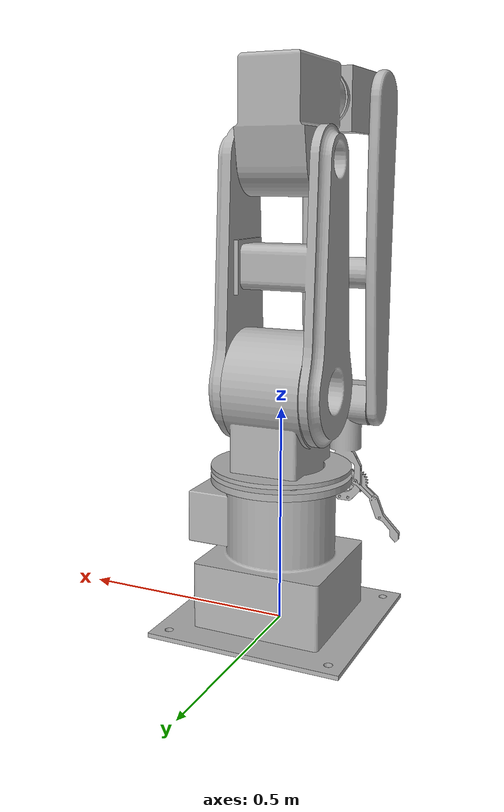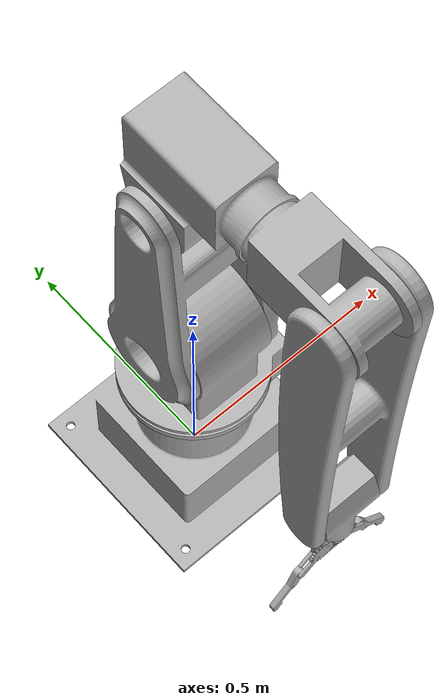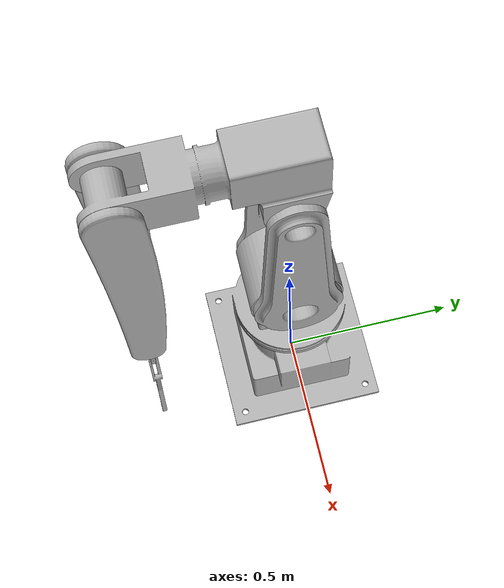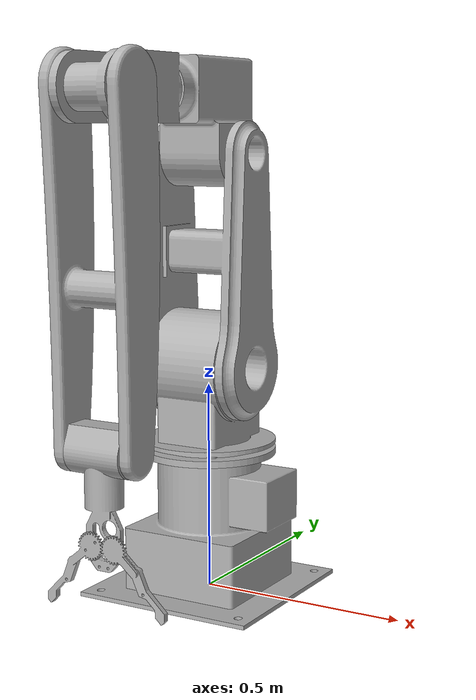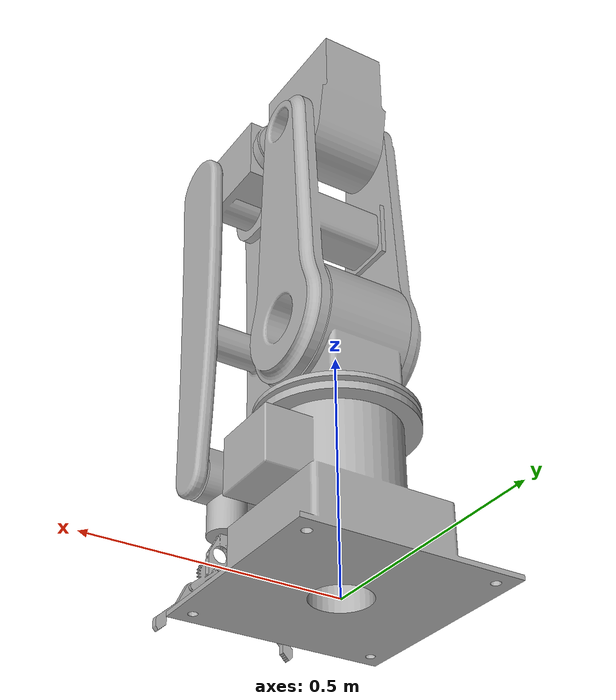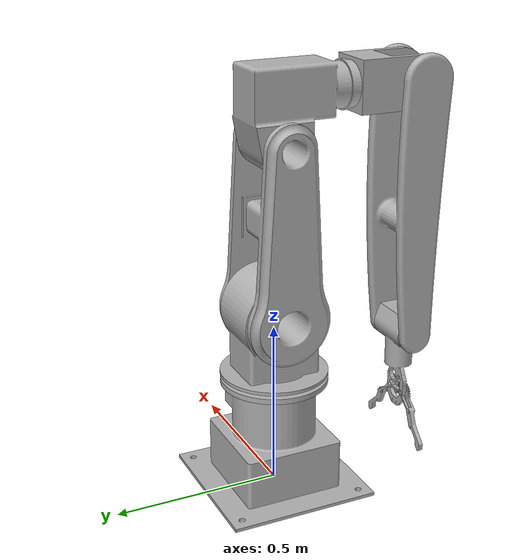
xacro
<?xml version="1.0" ?>
<robot name="gripperone" xmlns:xacro="http://www.ros.org/wiki/xacro">

<xacro:include filename="$(find gripperone_description)/urdf/materials.xacro" />
<xacro:include filename="$(find gripperone_description)/urdf/gripperone.trans" />
<xacro:include filename="$(find gripperone_description)/urdf/gripperone.gazebo" />
<link name="base_link">
  <inertial>
    <origin rpy="0 0 0" xyz="0.013100742072346745 3.232305809001723e-17 0.128434649849364"/>
    <mass value="141.36352349403447"/>
    <inertia ixx="2.770677" ixy="0.0" ixz="-0.206615" iyy="3.022714" iyz="0.0" izz="2.748975"/>
  </inertial>
  <visual>
    <origin rpy="0 0 0" xyz="0 0 0"/>
    <geometry>
      <mesh filename="package://gripperone_description/meshes/base_link.stl" scale="0.001 0.001 0.001"/>
    </geometry>
    <material name="silver"/>
  </visual>
  <collision>
    <origin rpy="0 0 0" xyz="0 0 0"/>
    <geometry>
      <mesh filename="package://gripperone_description/meshes/base_link.stl" scale="0.001 0.001 0.001"/>
    </geometry>
  </collision>
</link>

<link name="link1_1">
  <inertial>
    <origin rpy="0 0 0" xyz="7.96052754045408e-09 1.1704235139557597e-07 0.05605079320414236"/>
    <mass value="113.94031727647719"/>
    <inertia ixx="2.418287" ixy="0.0" ixz="-0.0" iyy="2.208887" iyz="-1e-06" izz="0.859498"/>
  </inertial>
  <visual>
    <origin rpy="0 0 0" xyz="-0.0 -0.0 -0.37"/>
    <geometry>
      <mesh filename="package://gripperone_description/meshes/link1_1.stl" scale="0.001 0.001 0.001"/>
    </geometry>
    <material name="silver"/>
  </visual>
  <collision>
    <origin rpy="0 0 0" xyz="-0.0 -0.0 -0.37"/>
    <geometry>
      <mesh filename="package://gripperone_description/meshes/link1_1.stl" scale="0.001 0.001 0.001"/>
    </geometry>
  </collision>
</link>

<link name="link2_1">
  <inertial>
    <origin rpy="0 0 0" xyz="0.5493289971509847 -0.09000000753235006 0.5305570384816423"/>
    <mass value="96.27136209757765"/>
    <inertia ixx="3.396419" ixy="0.0" ixz="-0.0" iyy="4.009316" iyz="0.0" izz="1.077023"/>
  </inertial>
  <visual>
    <origin rpy="0 0 0" xyz="0.548975 -0.09 -0.212975"/>
    <geometry>
      <mesh filename="package://gripperone_description/meshes/link2_1.stl" scale="0.001 0.001 0.001"/>
    </geometry>
    <material name="silver"/>
  </visual>
  <collision>
    <origin rpy="0 0 0" xyz="0.548975 -0.09 -0.212975"/>
    <geometry>
      <mesh filename="package://gripperone_description/meshes/link2_1.stl" scale="0.001 0.001 0.001"/>
    </geometry>
  </collision>
</link>

<link name="link3_1">
  <inertial>
    <origin rpy="0 0 0" xyz="1.044797001497465 -0.21075740777313084 0.6188289253614156"/>
    <mass value="89.40771247233054"/>
    <inertia ixx="2.454822" ixy="0.0" ixz="-0.0" iyy="0.570231" iyz="0.274684" izz="2.203132"/>
  </inertial>
  <visual>
    <origin rpy="0 0 0" xyz="1.048621 -0.089646 -0.548975"/>
    <geometry>
      <mesh filename="package://gripperone_description/meshes/link3_1.stl" scale="0.001 0.001 0.001"/>
    </geometry>
    <material name="silver"/>
  </visual>
  <collision>
    <origin rpy="0 0 0" xyz="1.048621 -0.089646 -0.548975"/>
    <geometry>
      <mesh filename="package://gripperone_description/meshes/link3_1.stl" scale="0.001 0.001 0.001"/>
    </geometry>
  </collision>
</link>

<link name="link4_1">
  <inertial>
    <origin rpy="0 0 0" xyz="-1.4265904594787382e-09 0.0060849484871947634 -0.3504329444028469"/>
    <mass value="67.9097115028488"/>
    <inertia ixx="4.721936" ixy="-0.0" ixz="-0.0" iyy="5.0523" iyz="0.010769" izz="0.494356"/>
  </inertial>
  <visual>
    <origin rpy="0 0 0" xyz="0.003824 0.427705 -1.192626"/>
    <geometry>
      <mesh filename="package://gripperone_description/meshes/link4_1.stl" scale="0.001 0.001 0.001"/>
    </geometry>
    <material name="silver"/>
  </visual>
  <collision>
    <origin rpy="0 0 0" xyz="0.003824 0.427705 -1.192626"/>
    <geometry>
      <mesh filename="package://gripperone_description/meshes/link4_1.stl" scale="0.001 0.001 0.001"/>
    </geometry>
  </collision>
</link>

<link name="link5_1">
  <inertial>
    <origin rpy="0 0 0" xyz="0.3218904956050812 -0.003710721314147347 0.39053282142218665"/>
    <mass value="9.640341866039392"/>
    <inertia ixx="0.052863" ixy="3e-06" ixz="-0.000271" iyy="0.057534" iyz="0.000179" izz="0.017456"/>
  </inertial>
  <visual>
    <origin rpy="0 0 0" xyz="0.32645 0.423881 0.00508"/>
    <geometry>
      <mesh filename="package://gripperone_description/meshes/link5_1.stl" scale="0.001 0.001 0.001"/>
    </geometry>
    <material name="silver"/>
  </visual>
  <collision>
    <origin rpy="0 0 0" xyz="0.32645 0.423881 0.00508"/>
    <geometry>
      <mesh filename="package://gripperone_description/meshes/link5_1.stl" scale="0.001 0.001 0.001"/>
    </geometry>
  </collision>
</link>

<link name="finger1_1">
  <inertial>
    <origin rpy="0 0 0" xyz="-0.048294418604868564 0.0030405265471282195 -0.05130421226060786"/>
    <mass value="0.4623359413194335"/>
    <inertia ixx="0.001069" ixy="6.5e-05" ixz="-0.000864" iyy="0.001847" iyz="7.3e-05" izz="0.000811"/>
  </inertial>
  <visual>
    <origin rpy="0 0 0" xyz="0.035732 0.43251 -0.212317"/>
    <geometry>
      <mesh filename="package://gripperone_description/meshes/finger1_1.stl" scale="0.001 0.001 0.001"/>
    </geometry>
    <material name="silver"/>
  </visual>
  <collision>
    <origin rpy="0 0 0" xyz="0.035732 0.43251 -0.212317"/>
    <geometry>
      <mesh filename="package://gripperone_description/meshes/finger1_1.stl" scale="0.001 0.001 0.001"/>
    </geometry>
  </collision>
</link>

<link name="finger2_1">
  <inertial>
    <origin rpy="0 0 0" xyz="0.04744724710552086 0.003574144409227209 -0.05009911920004462"/>
    <mass value="0.48552512703105344"/>
    <inertia ixx="0.001074" ixy="-5.1e-05" ixz="0.000898" iyy="0.001899" iyz="5.4e-05" izz="0.000871"/>
  </inertial>
  <visual>
    <origin rpy="0 0 0" xyz="-0.023668 0.43251 -0.212162"/>
    <geometry>
      <mesh filename="package://gripperone_description/meshes/finger2_1.stl" scale="0.001 0.001 0.001"/>
    </geometry>
    <material name="silver"/>
  </visual>
  <collision>
    <origin rpy="0 0 0" xyz="-0.023668 0.43251 -0.212162"/>
    <geometry>
      <mesh filename="package://gripperone_description/meshes/finger2_1.stl" scale="0.001 0.001 0.001"/>
    </geometry>
  </collision>
</link>

<joint name="Rev75" type="continuous">
  <origin rpy="0 0 0" xyz="0.0 0.0 0.37"/>
  <parent link="base_link"/>
  <child link="link1_1"/>
  <axis xyz="0.0 0.0 -1.0"/>
</joint>

<joint name="Rev76" type="continuous">
  <origin rpy="0 0 0" xyz="-0.548975 0.09 -0.157025"/>
  <parent link="link1_1"/>
  <child link="link2_1"/>
  <axis xyz="1.0 0.0 -0.0"/>
</joint>

<joint name="Rev77" type="continuous">
  <origin rpy="0 0 0" xyz="-0.499646 -0.000354 0.336"/>
  <parent link="link2_1"/>
  <child link="link3_1"/>
  <axis xyz="1.0 0.0 -0.0"/>
</joint>

<joint name="Rev78" type="continuous">
  <origin rpy="0 0 0" xyz="1.044797 -0.517351 0.643651"/>
  <parent link="link3_1"/>
  <child link="link4_1"/>
  <axis xyz="1.0 0.0 -0.0"/>
</joint>

<joint name="Rev79" type="continuous">
  <origin rpy="0 0 0" xyz="-0.322626 0.003824 -1.197706"/>
  <parent link="link4_1"/>
  <child link="link5_1"/>
  <axis xyz="-1.0 -0.0 0.0"/>
</joint>

<joint name="Rev80" type="continuous">
  <origin rpy="0 0 0" xyz="0.290718 -0.008629 0.217397"/>
  <parent link="link5_1"/>
  <child link="finger1_1"/>
  <axis xyz="-0.0 -1.0 -0.0"/>
</joint>

<joint name="Rev81" type="continuous">
  <origin rpy="0 0 0" xyz="0.350118 -0.008629 0.217242"/>
  <parent link="link5_1"/>
  <child link="finger2_1"/>
  <axis xyz="-0.0 -1.0 -0.0"/>
</joint>

</robot>

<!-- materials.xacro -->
<robot name="gripperone" xmlns:xacro="http://www.ros.org/wiki/xacro" >

<material name="silver">
  <color rgba="0.700 0.700 0.700 1.000"/>
</material>

</robot>

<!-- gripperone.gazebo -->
<robot name="gripperone" xmlns:xacro="http://www.ros.org/wiki/xacro" >

<xacro:property name="body_color" value="Gazebo/Silver" />

<gazebo>
  <plugin filename="libgazebo_ros_control.so" name="control"/>
</gazebo>
<gazebo reference="base_link">
  <material>${body_color}</material>
  <mu1>0.2</mu1>
  <mu2>0.2</mu2>
  <selfCollide>true</selfCollide>
  <gravity>true</gravity>
</gazebo>

<gazebo reference="link1_1">
  <material>${body_color}</material>
  <mu1>0.2</mu1>
  <mu2>0.2</mu2>
  <selfCollide>true</selfCollide>
</gazebo>

<gazebo reference="link2_1">
  <material>${body_color}</material>
  <mu1>0.2</mu1>
  <mu2>0.2</mu2>
  <selfCollide>true</selfCollide>
</gazebo>

<gazebo reference="link3_1">
  <material>${body_color}</material>
  <mu1>0.2</mu1>
  <mu2>0.2</mu2>
  <selfCollide>true</selfCollide>
</gazebo>

<gazebo reference="link4_1">
  <material>${body_color}</material>
  <mu1>0.2</mu1>
  <mu2>0.2</mu2>
  <selfCollide>true</selfCollide>
</gazebo>

<gazebo reference="link5_1">
  <material>${body_color}</material>
  <mu1>0.2</mu1>
  <mu2>0.2</mu2>
  <selfCollide>true</selfCollide>
</gazebo>

<gazebo reference="finger1_1">
  <material>${body_color}</material>
  <mu1>0.2</mu1>
  <mu2>0.2</mu2>
  <selfCollide>true</selfCollide>
</gazebo>

<gazebo reference="finger2_1">
  <material>${body_color}</material>
  <mu1>0.2</mu1>
  <mu2>0.2</mu2>
  <selfCollide>true</selfCollide>
</gazebo>

</robot>
